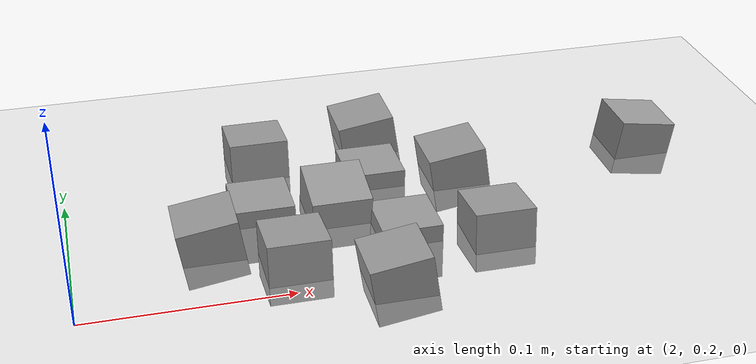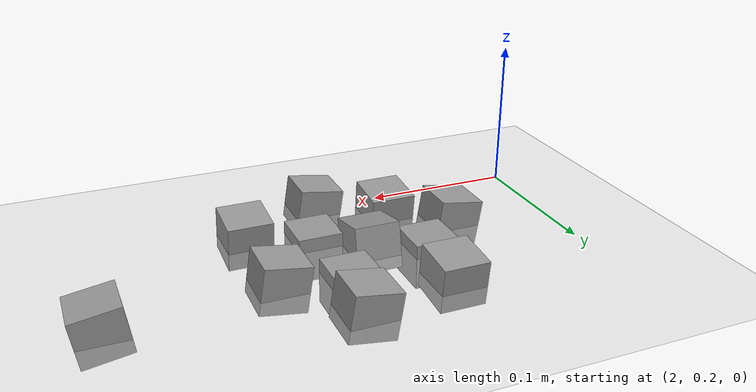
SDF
<sdf version="1.7">
 <world name="default">
  <model name="ground_plane">
   <static>1</static>
   <link name="link">
    <collision name="collision">
     <geometry><plane><normal>0 0 1</normal><size>100 100</size></plane></geometry>
     <surface><friction><ode><mu>100</mu><mu2>50</mu2></ode></friction></surface>
    </collision>
    <visual name="visual">
     <cast_shadows>0</cast_shadows>
     <geometry><plane><normal>0 0 1</normal><size>100 100</size></plane></geometry>
     <material>
      <script><uri>file://media/materials/scripts/gazebo.material</uri><name>Gazebo/Grey</name></script>
     </material>
    </visual>
   </link>
  </model>
  <model name="stone_road_3">
   <link name="link_0_clone_13">
    <inertial>
     <mass>1</mass>
     <inertia>
      <ixx>0.166667</ixx>
      <ixy>0</ixy>
      <ixz>0</ixz>
      <iyy>0.166667</iyy>
      <iyz>0</iyz>
      <izz>0.166667</izz>
     </inertia>
    </inertial>
    <pose>0.107601 -0.134881 0.003778 0.2 -0 0</pose>
    <kinematic>1</kinematic>
    <visual name="visual">
     <geometry><box><size>0.03 0.03 0.03</size></box></geometry>
     <material>
      <lighting>1</lighting>
      <script><uri>file://media/materials/scripts/gazebo.material</uri><name>Gazebo/Grey</name></script>
      <shader type="pixel"><normal_map>__default__</normal_map></shader>
      <ambient>0.3 0.3 0.3 1</ambient>
      <diffuse>0.7 0.7 0.7 1</diffuse>
      <specular>0.01 0.01 0.01 1</specular>
      <emissive>0 0 0 1</emissive>
     </material>
    </visual>
    <collision name="collision">
     <geometry><box><size>0.03 0.03 0.03</size></box></geometry>
     <surface>
      <friction>
       <ode><mu>1</mu><mu2>1</mu2><fdir1>0 0 0</fdir1><slip1>0</slip1><slip2>0</slip2></ode>
       <torsional>
        <coefficient>1</coefficient>
        <patch_radius>0</patch_radius>
        <surface_radius>0</surface_radius>
        <use_patch_radius>1</use_patch_radius>
        <ode><slip>0</slip></ode>
       </torsional>
      </friction>
      <bounce><restitution_coefficient>0</restitution_coefficient><threshold>1e+06</threshold></bounce>
      <contact>
       <collide_without_contact>0</collide_without_contact>
       <collide_without_contact_bitmask>1</collide_without_contact_bitmask>
       <collide_bitmask>1</collide_bitmask>
       <ode>
        <soft_cfm>0</soft_cfm>
        <soft_erp>0.2</soft_erp>
        <kp>1e+13</kp>
        <kd>1</kd>
        <max_vel>0.01</max_vel>
        <min_depth>0</min_depth>
       </ode>
       <bullet>
        <split_impulse>1</split_impulse>
        <split_impulse_penetration_threshold>-0.01</split_impulse_penetration_threshold>
        <soft_cfm>0</soft_cfm>
        <soft_erp>0.2</soft_erp>
        <kp>1e+13</kp>
        <kd>1</kd>
       </bullet>
      </contact>
     </surface>
    </collision>
   </link>
   <link name="link_0_clone_2_clone_2_clone_13_clone_clone_11">
    <inertial>
     <mass>1</mass>
     <inertia>
      <ixx>0.166667</ixx>
      <ixy>0</ixy>
      <ixz>0</ixz>
      <iyy>0.166667</iyy>
      <iyz>0</iyz>
      <izz>0.166667</izz>
     </inertia>
    </inertial>
    <pose>0.178889 -0.173779 0.003778 -0.1 0 0</pose>
    <kinematic>1</kinematic>
    <visual name="visual">
     <geometry><box><size>0.03 0.03 0.03</size></box></geometry>
     <material>
      <lighting>1</lighting>
      <script><uri>file://media/materials/scripts/gazebo.material</uri><name>Gazebo/Grey</name></script>
      <shader type="pixel"><normal_map>__default__</normal_map></shader>
      <ambient>0.3 0.3 0.3 1</ambient>
      <diffuse>0.7 0.7 0.7 1</diffuse>
      <specular>0.01 0.01 0.01 1</specular>
      <emissive>0 0 0 1</emissive>
     </material>
    </visual>
    <collision name="collision">
     <geometry><box><size>0.03 0.03 0.03</size></box></geometry>
     <surface>
      <friction>
       <ode><mu>1</mu><mu2>1</mu2><fdir1>0 0 0</fdir1><slip1>0</slip1><slip2>0</slip2></ode>
       <torsional>
        <coefficient>1</coefficient>
        <patch_radius>0</patch_radius>
        <surface_radius>0</surface_radius>
        <use_patch_radius>1</use_patch_radius>
        <ode><slip>0</slip></ode>
       </torsional>
      </friction>
      <bounce><restitution_coefficient>0</restitution_coefficient><threshold>1e+06</threshold></bounce>
      <contact>
       <collide_without_contact>0</collide_without_contact>
       <collide_without_contact_bitmask>1</collide_without_contact_bitmask>
       <collide_bitmask>1</collide_bitmask>
       <ode>
        <soft_cfm>0</soft_cfm>
        <soft_erp>0.2</soft_erp>
        <kp>1e+13</kp>
        <kd>1</kd>
        <max_vel>0.01</max_vel>
        <min_depth>0</min_depth>
       </ode>
       <bullet>
        <split_impulse>1</split_impulse>
        <split_impulse_penetration_threshold>-0.01</split_impulse_penetration_threshold>
        <soft_cfm>0</soft_cfm>
        <soft_erp>0.2</soft_erp>
        <kp>1e+13</kp>
        <kd>1</kd>
       </bullet>
      </contact>
     </surface>
    </collision>
   </link>
   <link name="link_0_clone_2_clone_2_clone_13_clone_clone_12">
    <inertial>
     <mass>1</mass>
     <inertia>
      <ixx>0.166667</ixx>
      <ixy>0</ixy>
      <ixz>0</ixz>
      <iyy>0.166667</iyy>
      <iyz>0</iyz>
      <izz>0.166667</izz>
     </inertia>
    </inertial>
    <pose>0.078701 -0.177208 0.003778 -0.1 0 0</pose>
    <kinematic>1</kinematic>
    <visual name="visual">
     <geometry><box><size>0.03 0.03 0.03</size></box></geometry>
     <material>
      <lighting>1</lighting>
      <script><uri>file://media/materials/scripts/gazebo.material</uri><name>Gazebo/Grey</name></script>
      <shader type="pixel"><normal_map>__default__</normal_map></shader>
      <ambient>0.3 0.3 0.3 1</ambient>
      <diffuse>0.7 0.7 0.7 1</diffuse>
      <specular>0.01 0.01 0.01 1</specular>
      <emissive>0 0 0 1</emissive>
     </material>
    </visual>
    <collision name="collision">
     <geometry><box><size>0.03 0.03 0.03</size></box></geometry>
     <surface>
      <friction>
       <ode><mu>1</mu><mu2>1</mu2><fdir1>0 0 0</fdir1><slip1>0</slip1><slip2>0</slip2></ode>
       <torsional>
        <coefficient>1</coefficient>
        <patch_radius>0</patch_radius>
        <surface_radius>0</surface_radius>
        <use_patch_radius>1</use_patch_radius>
        <ode><slip>0</slip></ode>
       </torsional>
      </friction>
      <bounce><restitution_coefficient>0</restitution_coefficient><threshold>1e+06</threshold></bounce>
      <contact>
       <collide_without_contact>0</collide_without_contact>
       <collide_without_contact_bitmask>1</collide_without_contact_bitmask>
       <collide_bitmask>1</collide_bitmask>
       <ode>
        <soft_cfm>0</soft_cfm>
        <soft_erp>0.2</soft_erp>
        <kp>1e+13</kp>
        <kd>1</kd>
        <max_vel>0.01</max_vel>
        <min_depth>0</min_depth>
       </ode>
       <bullet>
        <split_impulse>1</split_impulse>
        <split_impulse_penetration_threshold>-0.01</split_impulse_penetration_threshold>
        <soft_cfm>0</soft_cfm>
        <soft_erp>0.2</soft_erp>
        <kp>1e+13</kp>
        <kd>1</kd>
       </bullet>
      </contact>
     </surface>
    </collision>
   </link>
   <link name="link_0_clone_2_clone_2_clone_13_clone_clone_16_clone_15">
    <inertial>
     <mass>1</mass>
     <inertia>
      <ixx>0.166667</ixx>
      <ixy>0</ixy>
      <ixz>0</ixz>
      <iyy>0.166667</iyy>
      <iyz>0</iyz>
      <izz>0.166667</izz>
     </inertia>
    </inertial>
    <pose>0.133032 -0.103459 -0.006222 0 -0 0</pose>
    <kinematic>1</kinematic>
    <visual name="visual">
     <geometry><box><size>0.03 0.03 0.03</size></box></geometry>
     <material>
      <lighting>1</lighting>
      <script><uri>file://media/materials/scripts/gazebo.material</uri><name>Gazebo/Grey</name></script>
      <shader type="pixel"><normal_map>__default__</normal_map></shader>
      <ambient>0.3 0.3 0.3 1</ambient>
      <diffuse>0.7 0.7 0.7 1</diffuse>
      <specular>0.01 0.01 0.01 1</specular>
      <emissive>0 0 0 1</emissive>
     </material>
    </visual>
    <collision name="collision">
     <geometry><box><size>0.03 0.03 0.03</size></box></geometry>
     <surface>
      <friction>
       <ode><mu>1</mu><mu2>1</mu2><fdir1>0 0 0</fdir1><slip1>0</slip1><slip2>0</slip2></ode>
       <torsional>
        <coefficient>1</coefficient>
        <patch_radius>0</patch_radius>
        <surface_radius>0</surface_radius>
        <use_patch_radius>1</use_patch_radius>
        <ode><slip>0</slip></ode>
       </torsional>
      </friction>
      <bounce><restitution_coefficient>0</restitution_coefficient><threshold>1e+06</threshold></bounce>
      <contact>
       <collide_without_contact>0</collide_without_contact>
       <collide_without_contact_bitmask>1</collide_without_contact_bitmask>
       <collide_bitmask>1</collide_bitmask>
       <ode>
        <soft_cfm>0</soft_cfm>
        <soft_erp>0.2</soft_erp>
        <kp>1e+13</kp>
        <kd>1</kd>
        <max_vel>0.01</max_vel>
        <min_depth>0</min_depth>
       </ode>
       <bullet>
        <split_impulse>1</split_impulse>
        <split_impulse_penetration_threshold>-0.01</split_impulse_penetration_threshold>
        <soft_cfm>0</soft_cfm>
        <soft_erp>0.2</soft_erp>
        <kp>1e+13</kp>
        <kd>1</kd>
       </bullet>
      </contact>
     </surface>
    </collision>
   </link>
   <link name="link_0_clone_2_clone_2_clone_13_clone_clone_16_clone_16">
    <inertial>
     <mass>1</mass>
     <inertia>
      <ixx>0.166667</ixx>
      <ixy>0</ixy>
      <ixz>0</ixz>
      <iyy>0.166667</iyy>
      <iyz>0</iyz>
      <izz>0.166667</izz>
     </inertia>
    </inertial>
    <pose>0.071475 -0.124425 -0.006222 0 -0 0</pose>
    <kinematic>1</kinematic>
    <visual name="visual">
     <geometry><box><size>0.03 0.03 0.03</size></box></geometry>
     <material>
      <lighting>1</lighting>
      <script><uri>file://media/materials/scripts/gazebo.material</uri><name>Gazebo/Grey</name></script>
      <shader type="pixel"><normal_map>__default__</normal_map></shader>
      <ambient>0.3 0.3 0.3 1</ambient>
      <diffuse>0.7 0.7 0.7 1</diffuse>
      <specular>0.01 0.01 0.01 1</specular>
      <emissive>0 0 0 1</emissive>
     </material>
    </visual>
    <collision name="collision">
     <geometry><box><size>0.03 0.03 0.03</size></box></geometry>
     <surface>
      <friction>
       <ode><mu>1</mu><mu2>1</mu2><fdir1>0 0 0</fdir1><slip1>0</slip1><slip2>0</slip2></ode>
       <torsional>
        <coefficient>1</coefficient>
        <patch_radius>0</patch_radius>
        <surface_radius>0</surface_radius>
        <use_patch_radius>1</use_patch_radius>
        <ode><slip>0</slip></ode>
       </torsional>
      </friction>
      <bounce><restitution_coefficient>0</restitution_coefficient><threshold>1e+06</threshold></bounce>
      <contact>
       <collide_without_contact>0</collide_without_contact>
       <collide_without_contact_bitmask>1</collide_without_contact_bitmask>
       <collide_bitmask>1</collide_bitmask>
       <ode>
        <soft_cfm>0</soft_cfm>
        <soft_erp>0.2</soft_erp>
        <kp>1e+13</kp>
        <kd>1</kd>
        <max_vel>0.01</max_vel>
        <min_depth>0</min_depth>
       </ode>
       <bullet>
        <split_impulse>1</split_impulse>
        <split_impulse_penetration_threshold>-0.01</split_impulse_penetration_threshold>
        <soft_cfm>0</soft_cfm>
        <soft_erp>0.2</soft_erp>
        <kp>1e+13</kp>
        <kd>1</kd>
       </bullet>
      </contact>
     </surface>
    </collision>
   </link>
   <link name="link_0_clone_2_clone_2_clone_13_clone_clone_16_clone_18">
    <inertial>
     <mass>1</mass>
     <inertia>
      <ixx>0.166667</ixx>
      <ixy>0</ixy>
      <ixz>0</ixz>
      <iyy>0.166667</iyy>
      <iyz>0</iyz>
      <izz>0.166667</izz>
     </inertia>
    </inertial>
    <pose>0.137197 -0.158693 -0.006222 0 -0 0</pose>
    <kinematic>1</kinematic>
    <visual name="visual">
     <geometry><box><size>0.03 0.03 0.03</size></box></geometry>
     <material>
      <lighting>1</lighting>
      <script><uri>file://media/materials/scripts/gazebo.material</uri><name>Gazebo/Grey</name></script>
      <shader type="pixel"><normal_map>__default__</normal_map></shader>
      <ambient>0.3 0.3 0.3 1</ambient>
      <diffuse>0.7 0.7 0.7 1</diffuse>
      <specular>0.01 0.01 0.01 1</specular>
      <emissive>0 0 0 1</emissive>
     </material>
    </visual>
    <collision name="collision">
     <geometry><box><size>0.03 0.03 0.03</size></box></geometry>
     <surface>
      <friction>
       <ode><mu>1</mu><mu2>1</mu2><fdir1>0 0 0</fdir1><slip1>0</slip1><slip2>0</slip2></ode>
       <torsional>
        <coefficient>1</coefficient>
        <patch_radius>0</patch_radius>
        <surface_radius>0</surface_radius>
        <use_patch_radius>1</use_patch_radius>
        <ode><slip>0</slip></ode>
       </torsional>
      </friction>
      <bounce><restitution_coefficient>0</restitution_coefficient><threshold>1e+06</threshold></bounce>
      <contact>
       <collide_without_contact>0</collide_without_contact>
       <collide_without_contact_bitmask>1</collide_without_contact_bitmask>
       <collide_bitmask>1</collide_bitmask>
       <ode>
        <soft_cfm>0</soft_cfm>
        <soft_erp>0.2</soft_erp>
        <kp>1e+13</kp>
        <kd>1</kd>
        <max_vel>0.01</max_vel>
        <min_depth>0</min_depth>
       </ode>
       <bullet>
        <split_impulse>1</split_impulse>
        <split_impulse_penetration_threshold>-0.01</split_impulse_penetration_threshold>
        <soft_cfm>0</soft_cfm>
        <soft_erp>0.2</soft_erp>
        <kp>1e+13</kp>
        <kd>1</kd>
       </bullet>
      </contact>
     </surface>
    </collision>
   </link>
   <link name="link_0_clone_2_clone_2_clone_13_clone_clone_5">
    <inertial>
     <mass>1</mass>
     <inertia>
      <ixx>0.166667</ixx>
      <ixy>0</ixy>
      <ixz>0</ixz>
      <iyy>0.166667</iyy>
      <iyz>0</iyz>
      <izz>0.166667</izz>
     </inertia>
    </inertial>
    <pose>0.076743 -0.079785 0.003778 -0.1 0 0</pose>
    <kinematic>1</kinematic>
    <visual name="visual">
     <geometry><box><size>0.03 0.03 0.03</size></box></geometry>
     <material>
      <lighting>1</lighting>
      <script><uri>file://media/materials/scripts/gazebo.material</uri><name>Gazebo/Grey</name></script>
      <shader type="pixel"><normal_map>__default__</normal_map></shader>
      <ambient>0.3 0.3 0.3 1</ambient>
      <diffuse>0.7 0.7 0.7 1</diffuse>
      <specular>0.01 0.01 0.01 1</specular>
      <emissive>0 0 0 1</emissive>
     </material>
    </visual>
    <collision name="collision">
     <geometry><box><size>0.03 0.03 0.03</size></box></geometry>
     <surface>
      <friction>
       <ode><mu>1</mu><mu2>1</mu2><fdir1>0 0 0</fdir1><slip1>0</slip1><slip2>0</slip2></ode>
       <torsional>
        <coefficient>1</coefficient>
        <patch_radius>0</patch_radius>
        <surface_radius>0</surface_radius>
        <use_patch_radius>1</use_patch_radius>
        <ode><slip>0</slip></ode>
       </torsional>
      </friction>
      <bounce><restitution_coefficient>0</restitution_coefficient><threshold>1e+06</threshold></bounce>
      <contact>
       <collide_without_contact>0</collide_without_contact>
       <collide_without_contact_bitmask>1</collide_without_contact_bitmask>
       <collide_bitmask>1</collide_bitmask>
       <ode>
        <soft_cfm>0</soft_cfm>
        <soft_erp>0.2</soft_erp>
        <kp>1e+13</kp>
        <kd>1</kd>
        <max_vel>0.01</max_vel>
        <min_depth>0</min_depth>
       </ode>
       <bullet>
        <split_impulse>1</split_impulse>
        <split_impulse_penetration_threshold>-0.01</split_impulse_penetration_threshold>
        <soft_cfm>0</soft_cfm>
        <soft_erp>0.2</soft_erp>
        <kp>1e+13</kp>
        <kd>1</kd>
       </bullet>
      </contact>
     </surface>
    </collision>
   </link>
   <link name="link_0_clone_2_clone_2_clone_4">
    <inertial>
     <mass>1</mass>
     <inertia>
      <ixx>0.166667</ixx>
      <ixy>0</ixy>
      <ixz>0</ixz>
      <iyy>0.166667</iyy>
      <iyz>0</iyz>
      <izz>0.166667</izz>
     </inertia>
    </inertial>
    <pose>0.042048 -0.151731 0.003778 0 -0.15 0</pose>
    <kinematic>1</kinematic>
    <visual name="visual">
     <geometry><box><size>0.03 0.03 0.03</size></box></geometry>
     <material>
      <lighting>1</lighting>
      <script><uri>file://media/materials/scripts/gazebo.material</uri><name>Gazebo/Grey</name></script>
      <shader type="pixel"><normal_map>__default__</normal_map></shader>
      <ambient>0.3 0.3 0.3 1</ambient>
      <diffuse>0.7 0.7 0.7 1</diffuse>
      <specular>0.01 0.01 0.01 1</specular>
      <emissive>0 0 0 1</emissive>
     </material>
    </visual>
    <collision name="collision">
     <geometry><box><size>0.03 0.03 0.03</size></box></geometry>
     <surface>
      <friction>
       <ode><mu>1</mu><mu2>1</mu2><fdir1>0 0 0</fdir1><slip1>0</slip1><slip2>0</slip2></ode>
       <torsional>
        <coefficient>1</coefficient>
        <patch_radius>0</patch_radius>
        <surface_radius>0</surface_radius>
        <use_patch_radius>1</use_patch_radius>
        <ode><slip>0</slip></ode>
       </torsional>
      </friction>
      <bounce><restitution_coefficient>0</restitution_coefficient><threshold>1e+06</threshold></bounce>
      <contact>
       <collide_without_contact>0</collide_without_contact>
       <collide_without_contact_bitmask>1</collide_without_contact_bitmask>
       <collide_bitmask>1</collide_bitmask>
       <ode>
        <soft_cfm>0</soft_cfm>
        <soft_erp>0.2</soft_erp>
        <kp>1e+13</kp>
        <kd>1</kd>
        <max_vel>0.01</max_vel>
        <min_depth>0</min_depth>
       </ode>
       <bullet>
        <split_impulse>1</split_impulse>
        <split_impulse_penetration_threshold>-0.01</split_impulse_penetration_threshold>
        <soft_cfm>0</soft_cfm>
        <soft_erp>0.2</soft_erp>
        <kp>1e+13</kp>
        <kd>1</kd>
       </bullet>
      </contact>
     </surface>
    </collision>
   </link>
   <link name="link_0_clone_2_clone_2_clone_5">
    <inertial>
     <mass>1</mass>
     <inertia>
      <ixx>0.166667</ixx>
      <ixy>0</ixy>
      <ixz>0</ixz>
      <iyy>0.166667</iyy>
      <iyz>0</iyz>
      <izz>0.166667</izz>
     </inertia>
    </inertial>
    <pose>0.13842 -0.067468 0.003778 0 -0.15 0</pose>
    <kinematic>1</kinematic>
    <visual name="visual">
     <geometry><box><size>0.03 0.03 0.03</size></box></geometry>
     <material>
      <lighting>1</lighting>
      <script><uri>file://media/materials/scripts/gazebo.material</uri><name>Gazebo/Grey</name></script>
      <shader type="pixel"><normal_map>__default__</normal_map></shader>
      <ambient>0.3 0.3 0.3 1</ambient>
      <diffuse>0.7 0.7 0.7 1</diffuse>
      <specular>0.01 0.01 0.01 1</specular>
      <emissive>0 0 0 1</emissive>
     </material>
    </visual>
    <collision name="collision">
     <geometry><box><size>0.03 0.03 0.03</size></box></geometry>
     <surface>
      <friction>
       <ode><mu>1</mu><mu2>1</mu2><fdir1>0 0 0</fdir1><slip1>0</slip1><slip2>0</slip2></ode>
       <torsional>
        <coefficient>1</coefficient>
        <patch_radius>0</patch_radius>
        <surface_radius>0</surface_radius>
        <use_patch_radius>1</use_patch_radius>
        <ode><slip>0</slip></ode>
       </torsional>
      </friction>
      <bounce><restitution_coefficient>0</restitution_coefficient><threshold>1e+06</threshold></bounce>
      <contact>
       <collide_without_contact>0</collide_without_contact>
       <collide_without_contact_bitmask>1</collide_without_contact_bitmask>
       <collide_bitmask>1</collide_bitmask>
       <ode>
        <soft_cfm>0</soft_cfm>
        <soft_erp>0.2</soft_erp>
        <kp>1e+13</kp>
        <kd>1</kd>
        <max_vel>0.01</max_vel>
        <min_depth>0</min_depth>
       </ode>
       <bullet>
        <split_impulse>1</split_impulse>
        <split_impulse_penetration_threshold>-0.01</split_impulse_penetration_threshold>
        <soft_cfm>0</soft_cfm>
        <soft_erp>0.2</soft_erp>
        <kp>1e+13</kp>
        <kd>1</kd>
       </bullet>
      </contact>
     </surface>
    </collision>
   </link>
   <link name="link_0_clone_2_clone_2_clone_7">
    <inertial>
     <mass>1</mass>
     <inertia>
      <ixx>0.166667</ixx>
      <ixy>0</ixy>
      <ixz>0</ixz>
      <iyy>0.166667</iyy>
      <iyz>0</iyz>
      <izz>0.166667</izz>
     </inertia>
    </inertial>
    <pose>0.175499 -0.112442 0.003778 0 -0.15 0</pose>
    <kinematic>1</kinematic>
    <visual name="visual">
     <geometry><box><size>0.03 0.03 0.03</size></box></geometry>
     <material>
      <lighting>1</lighting>
      <script><uri>file://media/materials/scripts/gazebo.material</uri><name>Gazebo/Grey</name></script>
      <shader type="pixel"><normal_map>__default__</normal_map></shader>
      <ambient>0.3 0.3 0.3 1</ambient>
      <diffuse>0.7 0.7 0.7 1</diffuse>
      <specular>0.01 0.01 0.01 1</specular>
      <emissive>0 0 0 1</emissive>
     </material>
    </visual>
    <collision name="collision">
     <geometry><box><size>0.03 0.03 0.03</size></box></geometry>
     <surface>
      <friction>
       <ode><mu>1</mu><mu2>1</mu2><fdir1>0 0 0</fdir1><slip1>0</slip1><slip2>0</slip2></ode>
       <torsional>
        <coefficient>1</coefficient>
        <patch_radius>0</patch_radius>
        <surface_radius>0</surface_radius>
        <use_patch_radius>1</use_patch_radius>
        <ode><slip>0</slip></ode>
       </torsional>
      </friction>
      <bounce><restitution_coefficient>0</restitution_coefficient><threshold>1e+06</threshold></bounce>
      <contact>
       <collide_without_contact>0</collide_without_contact>
       <collide_without_contact_bitmask>1</collide_without_contact_bitmask>
       <collide_bitmask>1</collide_bitmask>
       <ode>
        <soft_cfm>0</soft_cfm>
        <soft_erp>0.2</soft_erp>
        <kp>1e+13</kp>
        <kd>1</kd>
        <max_vel>0.01</max_vel>
        <min_depth>0</min_depth>
       </ode>
       <bullet>
        <split_impulse>1</split_impulse>
        <split_impulse_penetration_threshold>-0.01</split_impulse_penetration_threshold>
        <soft_cfm>0</soft_cfm>
        <soft_erp>0.2</soft_erp>
        <kp>1e+13</kp>
        <kd>1</kd>
       </bullet>
      </contact>
     </surface>
    </collision>
   </link>
   <link name="link_0_clone_2_clone_2_clone_8">
    <inertial>
     <mass>1</mass>
     <inertia>
      <ixx>0.166667</ixx>
      <ixy>0</ixy>
      <ixz>0</ixz>
      <iyy>0.166667</iyy>
      <iyz>0</iyz>
      <izz>0.166667</izz>
     </inertia>
    </inertial>
    <pose>0.122141 -0.201696 0.003778 0 -0.15 0</pose>
    <kinematic>1</kinematic>
    <visual name="visual">
     <geometry><box><size>0.03 0.03 0.03</size></box></geometry>
     <material>
      <lighting>1</lighting>
      <script><uri>file://media/materials/scripts/gazebo.material</uri><name>Gazebo/Grey</name></script>
      <shader type="pixel"><normal_map>__default__</normal_map></shader>
      <ambient>0.3 0.3 0.3 1</ambient>
      <diffuse>0.7 0.7 0.7 1</diffuse>
      <specular>0.01 0.01 0.01 1</specular>
      <emissive>0 0 0 1</emissive>
     </material>
    </visual>
    <collision name="collision">
     <geometry><box><size>0.03 0.03 0.03</size></box></geometry>
     <surface>
      <friction>
       <ode><mu>1</mu><mu2>1</mu2><fdir1>0 0 0</fdir1><slip1>0</slip1><slip2>0</slip2></ode>
       <torsional>
        <coefficient>1</coefficient>
        <patch_radius>0</patch_radius>
        <surface_radius>0</surface_radius>
        <use_patch_radius>1</use_patch_radius>
        <ode><slip>0</slip></ode>
       </torsional>
      </friction>
      <bounce><restitution_coefficient>0</restitution_coefficient><threshold>1e+06</threshold></bounce>
      <contact>
       <collide_without_contact>0</collide_without_contact>
       <collide_without_contact_bitmask>1</collide_without_contact_bitmask>
       <collide_bitmask>1</collide_bitmask>
       <ode>
        <soft_cfm>0</soft_cfm>
        <soft_erp>0.2</soft_erp>
        <kp>1e+13</kp>
        <kd>1</kd>
        <max_vel>0.01</max_vel>
        <min_depth>0</min_depth>
       </ode>
       <bullet>
        <split_impulse>1</split_impulse>
        <split_impulse_penetration_threshold>-0.01</split_impulse_penetration_threshold>
        <soft_cfm>0</soft_cfm>
        <soft_erp>0.2</soft_erp>
        <kp>1e+13</kp>
        <kd>1</kd>
       </bullet>
      </contact>
     </surface>
    </collision>
   </link>
   <static>0</static>
   <pose>2.02404 0.399702 -0 0 -0 0</pose>
  </model>
  <model name="stone_road_7">
   <link name="link_0_clone_2_clone_5">
    <inertial>
     <mass>1</mass>
     <inertia>
      <ixx>0.166667</ixx>
      <ixy>0</ixy>
      <ixz>0</ixz>
      <iyy>0.166667</iyy>
      <iyz>0</iyz>
      <izz>0.166667</izz>
     </inertia>
    </inertial>
    <pose>-0.268485 0.053169 0.003778 0 0.15 0</pose>
    <kinematic>1</kinematic>
    <visual name="visual">
     <geometry><box><size>0.03 0.03 0.03</size></box></geometry>
     <material>
      <lighting>1</lighting>
      <script><uri>file://media/materials/scripts/gazebo.material</uri><name>Gazebo/Grey</name></script>
      <shader type="pixel"><normal_map>__default__</normal_map></shader>
      <ambient>0.3 0.3 0.3 1</ambient>
      <diffuse>0.7 0.7 0.7 1</diffuse>
      <specular>0.01 0.01 0.01 1</specular>
      <emissive>0 0 0 1</emissive>
     </material>
    </visual>
    <collision name="collision">
     <geometry><box><size>0.03 0.03 0.03</size></box></geometry>
     <surface>
      <friction>
       <ode><mu>1</mu><mu2>1</mu2><fdir1>0 0 0</fdir1><slip1>0</slip1><slip2>0</slip2></ode>
       <torsional>
        <coefficient>1</coefficient>
        <patch_radius>0</patch_radius>
        <surface_radius>0</surface_radius>
        <use_patch_radius>1</use_patch_radius>
        <ode><slip>0</slip></ode>
       </torsional>
      </friction>
      <bounce><restitution_coefficient>0</restitution_coefficient><threshold>1e+06</threshold></bounce>
      <contact>
       <collide_without_contact>0</collide_without_contact>
       <collide_without_contact_bitmask>1</collide_without_contact_bitmask>
       <collide_bitmask>1</collide_bitmask>
       <ode>
        <soft_cfm>0</soft_cfm>
        <soft_erp>0.2</soft_erp>
        <kp>1e+13</kp>
        <kd>1</kd>
        <max_vel>0.01</max_vel>
        <min_depth>0</min_depth>
       </ode>
       <bullet>
        <split_impulse>1</split_impulse>
        <split_impulse_penetration_threshold>-0.01</split_impulse_penetration_threshold>
        <soft_cfm>0</soft_cfm>
        <soft_erp>0.2</soft_erp>
        <kp>1e+13</kp>
        <kd>1</kd>
       </bullet>
      </contact>
     </surface>
    </collision>
   </link>
   <static>0</static>
   <pose>2.57282 0.242462 -0 0 -0 0</pose>
  </model>
 </world>
</sdf>
